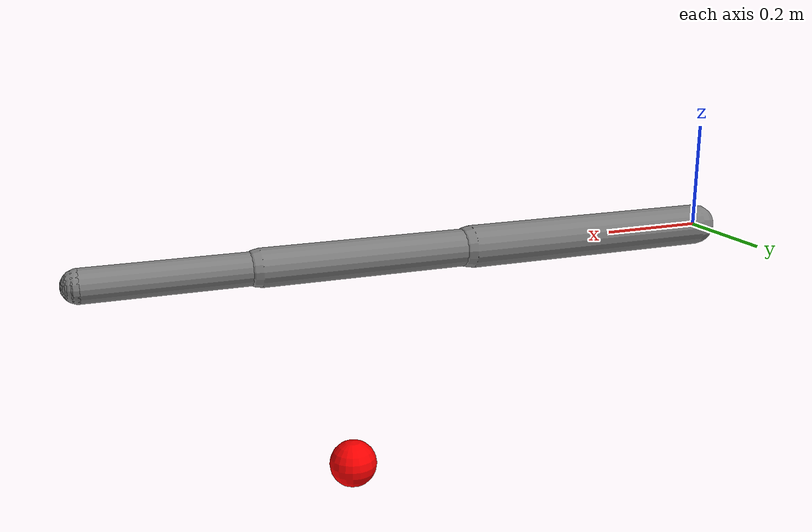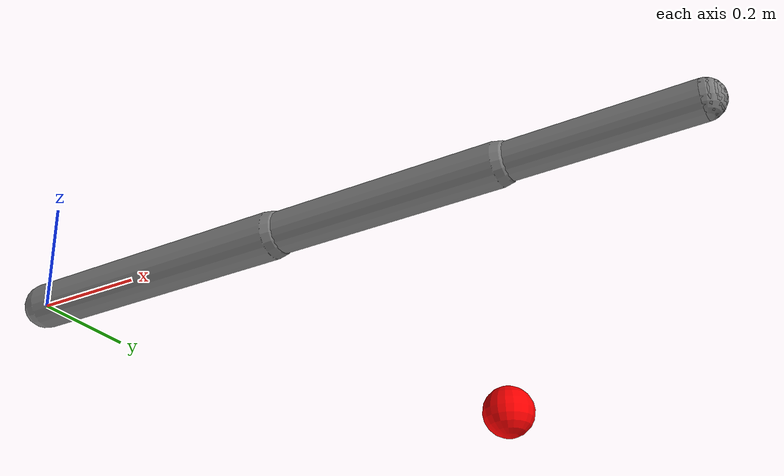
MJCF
<mujoco model="arm3d">

    <option gravity="0 0 0"/>

    <worldbody>

        <body name="base"
              pos="0 0 0">

            <joint
                name="joint1"
                type="hinge"
                axis="0 0 1"/>

            <geom
                type="capsule"
                fromto="0 0 0 0.5 0 0"
                size="0.04"/>

            <body pos="0.5 0 0">

                <joint
                    name="joint2"
                    type="hinge"
                    axis="0 1 0"/>

                <geom
                    type="capsule"
                    fromto="0 0 0 0.4 0 0"
                    size="0.035"/>

                <body pos="0.4 0 0">

                    <joint
                        name="joint3"
                        type="hinge"
                        axis="0 1 0"/>

                    <geom
                        type="capsule"
                        fromto="0 0 0 0.3 0 0"
                        size="0.03"/>

                    <site
                        name="ee"
                        pos="0.3 0 0"
                        size="0.03"/>

                </body>

            </body>

        </body>

        <body name="target" pos="0.8 0.2 -0.3">

            <geom
                type="sphere"
                size="0.04"
                rgba="1 0 0 1"/>

        </body>

    </worldbody>

</mujoco>
